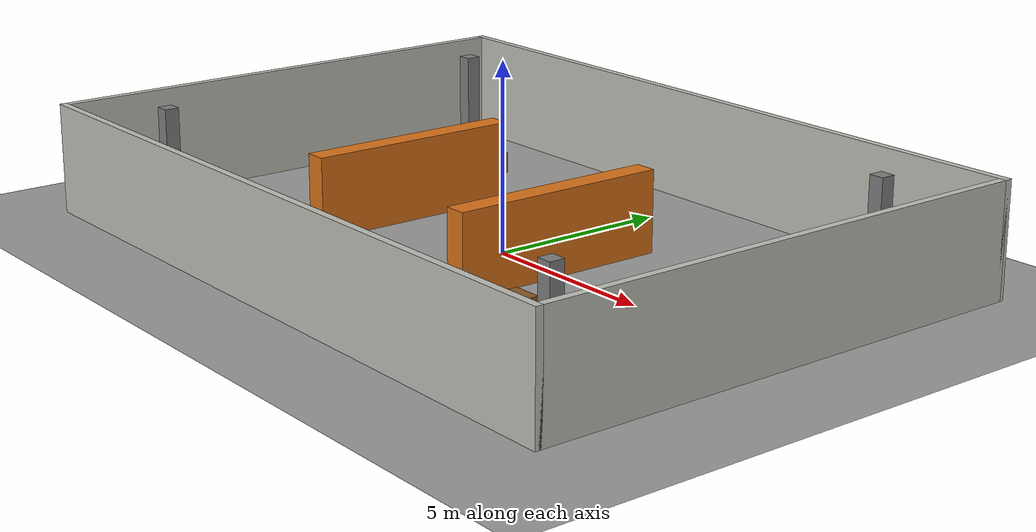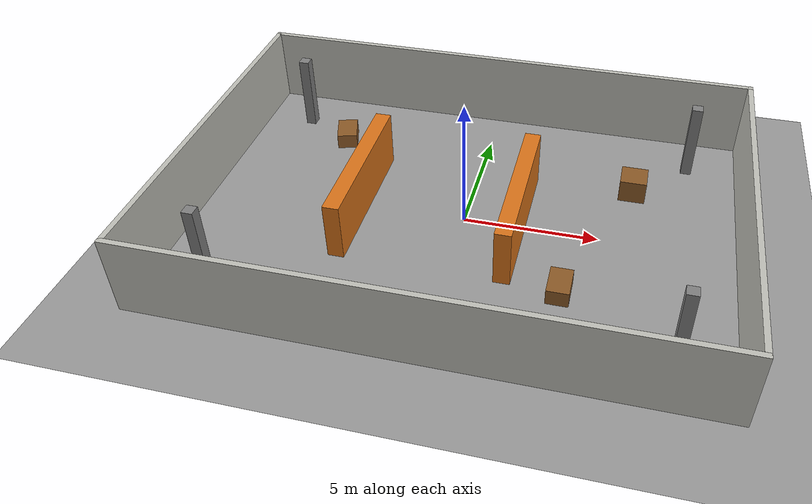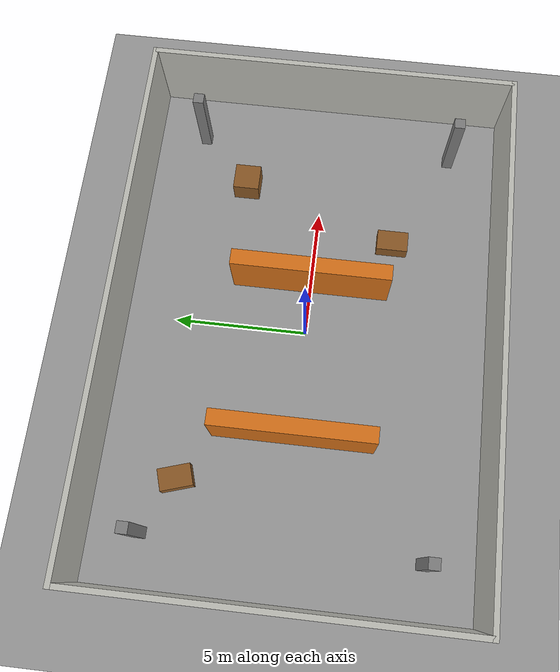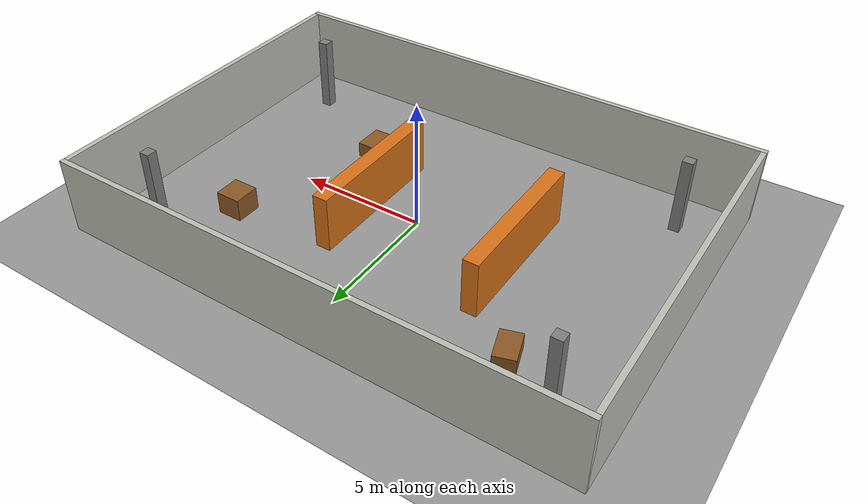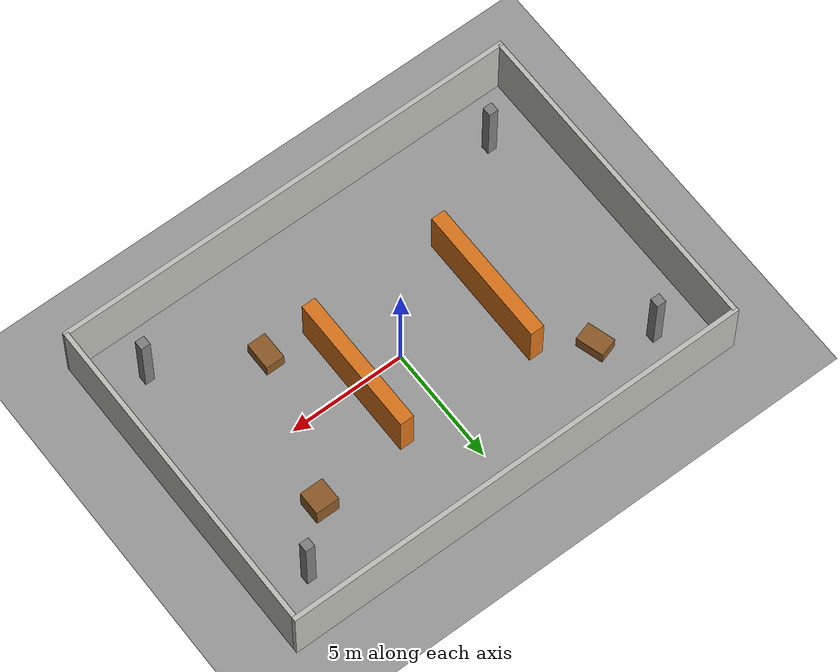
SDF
<?xml version="1.0" ?>
<sdf version="1.9">
  <world name="amr_world">

    <plugin filename="gz-sim-physics-system" name="gz::sim::systems::Physics" />
    <plugin filename="gz-sim-user-commands-system" name="gz::sim::systems::UserCommands" />
    <plugin filename="gz-sim-scene-broadcaster-system" name="gz::sim::systems::SceneBroadcaster" />
    <plugin filename="gz-sim-contact-system" name="gz::sim::systems::Contact" />
    <plugin filename="gz-sim-imu-system" name="gz::sim::systems::Imu" />
    <plugin filename="gz-sim-sensors-system" name="gz::sim::systems::Sensors">
      <render_engine>ogre2</render_engine>
    </plugin>

    <gravity>0 0 -9.8</gravity>

    <light type="directional" name="sun">
      <cast_shadows>true</cast_shadows>
      <pose>0 0 10 0 0 0</pose>
      <diffuse>0.8 0.8 0.8 1</diffuse>
      <specular>0.2 0.2 0.2 1</specular>
      <attenuation>
        <range>1000</range>
        <constant>0.9</constant>
        <linear>0.01</linear>
        <quadratic>0.001</quadratic>
      </attenuation>
      <direction>-0.5 0.1 -0.9</direction>
    </light>

    <model name="ground_plane">
      <static>true</static>
      <link name="link">
        <collision name="collision">
          <geometry>
            <plane>
              <normal>0 0 1</normal>
            </plane>
          </geometry>
        </collision>
        <visual name="visual">
          <geometry>
            <plane>
              <normal>0 0 1</normal>
              <size>40 28</size>
            </plane>
          </geometry>
          <material>
            <ambient>0.6 0.6 0.6 1</ambient>
            <diffuse>0.6 0.6 0.6 1</diffuse>
            <specular>0.3 0.3 0.3 1</specular>
          </material>
        </visual>
      </link>
    </model>

    <model name="wall_north">
      <static>true</static>
      <pose>0 7 1.5 0 0 0</pose>
      <link name="link">
        <collision name="collision">
          <geometry><box><size>20.2 0.2 3</size></box></geometry>
        </collision>
        <visual name="visual">
          <geometry><box><size>20.2 0.2 3</size></box></geometry>
          <material>
            <ambient>0.75 0.75 0.72 1</ambient>
            <diffuse>0.75 0.75 0.72 1</diffuse>
          </material>
        </visual>
      </link>
    </model>

    <model name="wall_south">
      <static>true</static>
      <pose>0 -7 1.5 0 0 0</pose>
      <link name="link">
        <collision name="collision">
          <geometry><box><size>20.2 0.2 3</size></box></geometry>
        </collision>
        <visual name="visual">
          <geometry><box><size>20.2 0.2 3</size></box></geometry>
          <material>
            <ambient>0.75 0.75 0.72 1</ambient>
            <diffuse>0.75 0.75 0.72 1</diffuse>
          </material>
        </visual>
      </link>
    </model>

    <model name="wall_east">
      <static>true</static>
      <pose>10 0 1.5 0 0 0</pose>
      <link name="link">
        <collision name="collision">
          <geometry><box><size>0.2 14 3</size></box></geometry>
        </collision>
        <visual name="visual">
          <geometry><box><size>0.2 14 3</size></box></geometry>
          <material>
            <ambient>0.75 0.75 0.72 1</ambient>
            <diffuse>0.75 0.75 0.72 1</diffuse>
          </material>
        </visual>
      </link>
    </model>

    <model name="wall_west">
      <static>true</static>
      <pose>-10 0 1.5 0 0 0</pose>
      <link name="link">
        <collision name="collision">
          <geometry><box><size>0.2 14 3</size></box></geometry>
        </collision>
        <visual name="visual">
          <geometry><box><size>0.2 14 3</size></box></geometry>
          <material>
            <ambient>0.75 0.75 0.72 1</ambient>
            <diffuse>0.75 0.75 0.72 1</diffuse>
          </material>
        </visual>
      </link>
    </model>

    <model name="rack_row_a">
      <static>true</static>
      <pose>-4 0 1.1 0 0 0</pose>
      <link name="link">
        <collision name="collision">
          <geometry><box><size>0.6 6 2.2</size></box></geometry>
        </collision>
        <visual name="visual">
          <geometry><box><size>0.6 6 2.2</size></box></geometry>
          <material>
            <ambient>0.85 0.45 0.1 1</ambient>
            <diffuse>0.85 0.45 0.1 1</diffuse>
          </material>
        </visual>
      </link>
    </model>

    <model name="rack_row_b">
      <static>true</static>
      <pose>2 0 1.1 0 0 0</pose>
      <link name="link">
        <collision name="collision">
          <geometry><box><size>0.6 6 2.2</size></box></geometry>
        </collision>
        <visual name="visual">
          <geometry><box><size>0.6 6 2.2</size></box></geometry>
          <material>
            <ambient>0.85 0.45 0.1 1</ambient>
            <diffuse>0.85 0.45 0.1 1</diffuse>
          </material>
        </visual>
      </link>
    </model>

    <model name="pallet_1">
      <static>true</static>
      <pose>4 -3 0.3 0 0 0</pose>
      <link name="link">
        <collision name="collision">
          <geometry><box><size>0.8 1.2 0.6</size></box></geometry>
        </collision>
        <visual name="visual">
          <geometry><box><size>0.8 1.2 0.6</size></box></geometry>
          <material>
            <ambient>0.55 0.35 0.15 1</ambient>
            <diffuse>0.55 0.35 0.15 1</diffuse>
          </material>
        </visual>
      </link>
    </model>

    <model name="pallet_2">
      <static>true</static>
      <pose>-6 4 0.3 0 0 0.3</pose>
      <link name="link">
        <collision name="collision">
          <geometry><box><size>0.8 1.2 0.6</size></box></geometry>
        </collision>
        <visual name="visual">
          <geometry><box><size>0.8 1.2 0.6</size></box></geometry>
          <material>
            <ambient>0.55 0.35 0.15 1</ambient>
            <diffuse>0.55 0.35 0.15 1</diffuse>
          </material>
        </visual>
      </link>
    </model>

    <model name="pallet_3">
      <static>true</static>
      <pose>6 3 0.45 0 0 0</pose>
      <link name="link">
        <collision name="collision">
          <geometry><box><size>1.0 1.0 0.9</size></box></geometry>
        </collision>
        <visual name="visual">
          <geometry><box><size>1.0 1.0 0.9</size></box></geometry>
          <material>
            <ambient>0.55 0.35 0.15 1</ambient>
            <diffuse>0.55 0.35 0.15 1</diffuse>
          </material>
        </visual>
      </link>
    </model>

    <model name="column_ne">
      <static>true</static>
      <pose>8 5 1.5 0 0 0</pose>
      <link name="link">
        <collision name="collision">
          <geometry><box><size>0.4 0.4 3</size></box></geometry>
        </collision>
        <visual name="visual">
          <geometry><box><size>0.4 0.4 3</size></box></geometry>
          <material>
            <ambient>0.5 0.5 0.5 1</ambient>
            <diffuse>0.5 0.5 0.5 1</diffuse>
          </material>
        </visual>
      </link>
    </model>

    <model name="column_nw">
      <static>true</static>
      <pose>-8 5 1.5 0 0 0</pose>
      <link name="link">
        <collision name="collision">
          <geometry><box><size>0.4 0.4 3</size></box></geometry>
        </collision>
        <visual name="visual">
          <geometry><box><size>0.4 0.4 3</size></box></geometry>
          <material>
            <ambient>0.5 0.5 0.5 1</ambient>
            <diffuse>0.5 0.5 0.5 1</diffuse>
          </material>
        </visual>
      </link>
    </model>

    <model name="column_se">
      <static>true</static>
      <pose>8 -5 1.5 0 0 0</pose>
      <link name="link">
        <collision name="collision">
          <geometry><box><size>0.4 0.4 3</size></box></geometry>
        </collision>
        <visual name="visual">
          <geometry><box><size>0.4 0.4 3</size></box></geometry>
          <material>
            <ambient>0.5 0.5 0.5 1</ambient>
            <diffuse>0.5 0.5 0.5 1</diffuse>
          </material>
        </visual>
      </link>
    </model>

    <model name="column_sw">
      <static>true</static>
      <pose>-8 -5 1.5 0 0 0</pose>
      <link name="link">
        <collision name="collision">
          <geometry><box><size>0.4 0.4 3</size></box></geometry>
        </collision>
        <visual name="visual">
          <geometry><box><size>0.4 0.4 3</size></box></geometry>
          <material>
            <ambient>0.5 0.5 0.5 1</ambient>
            <diffuse>0.5 0.5 0.5 1</diffuse>
          </material>
        </visual>
      </link>
    </model>

  </world>
</sdf>
